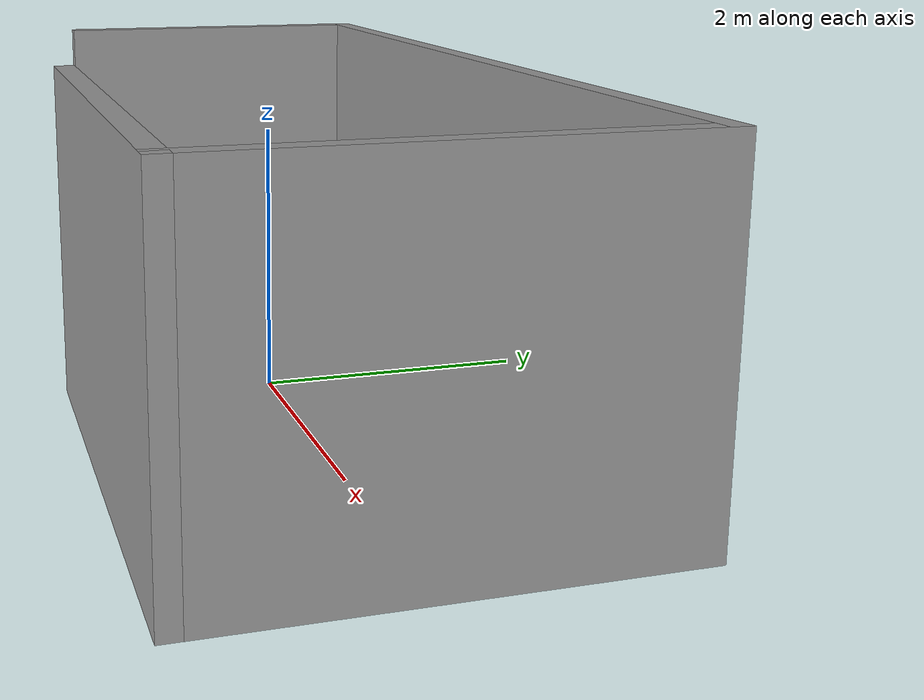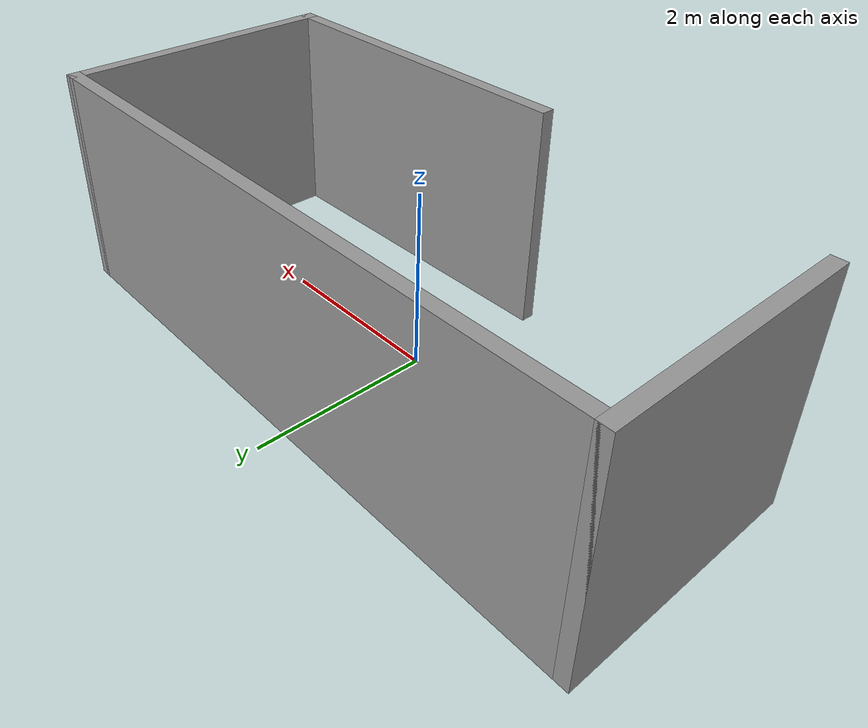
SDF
<?xml version='1.0'?>
<sdf version='1.7'>
  <model name='sweep_world'>
    <pose>0.13 0.08 0 0 -0 0</pose>
    <link name='Wall_0'>
      <collision name='Wall_0_Collision'>
        <geometry>
          <box>
            <size>2.75 0.15 2.5</size>
          </box>
        </geometry>
        <pose>0 0 1.25 0 -0 0</pose>
      </collision>
      <visual name='Wall_0_Visual'>
        <pose>0 0 1.25 0 -0 0</pose>
        <geometry>
          <box>
            <size>2.75 0.15 2.5</size>
          </box>
        </geometry>
        <material>
          <script>
            <name>Gazebo/Grey</name>
          </script>
          <ambient>1 1 1 1</ambient>
        </material>
        <meta>
          <layer>0</layer>
        </meta>
      </visual>
      <pose>-3.55 0.25 0 0 -0 1.5708</pose>
    </link>
    <link name='Wall_1'>
      <collision name='Wall_1_Collision'>
        <geometry>
          <box>
            <size>7.25 0.15 2.5</size>
          </box>
        </geometry>
        <pose>0 0 1.25 0 -0 0</pose>
      </collision>
      <visual name='Wall_1_Visual'>
        <pose>0 0 1.25 0 -0 0</pose>
        <geometry>
          <box>
            <size>7.25 0.15 2.5</size>
          </box>
        </geometry>
        <material>
          <script>
            <name>Gazebo/Grey</name>
          </script>
          <ambient>1 1 1 1</ambient>
        </material>
        <meta>
          <layer>0</layer>
        </meta>
      </visual>
      <pose>0 1.55 0 0 -0 0</pose>
    </link>
    <link name='Wall_2'>
      <collision name='Wall_2_Collision'>
        <geometry>
          <box>
            <size>3.25 0.15 2.5</size>
          </box>
        </geometry>
        <pose>0 0 1.25 0 -0 0</pose>
      </collision>
      <visual name='Wall_2_Visual'>
        <pose>0 0 1.25 0 -0 0</pose>
        <geometry>
          <box>
            <size>3.25 0.15 2.5</size>
          </box>
        </geometry>
        <material>
          <script>
            <name>Gazebo/Grey</name>
          </script>
          <ambient>1 1 1 1</ambient>
        </material>
        <meta>
          <layer>0</layer>
        </meta>
      </visual>
      <pose>3.55 -0 0 0 -0 -1.5708</pose>
    </link>
    <link name='Wall_3'>
      <collision name='Wall_3_Collision'>
        <geometry>
          <box>
            <size>4 0.15 2.5</size>
          </box>
        </geometry>
        <pose>0 0 1.25 0 -0 0</pose>
      </collision>
      <visual name='Wall_3_Visual'>
        <pose>0 0 1.25 0 -0 0</pose>
        <geometry>
          <box>
            <size>4 0.15 2.5</size>
          </box>
        </geometry>
        <material>
          <script>
            <name>Gazebo/Grey</name>
          </script>
          <ambient>1 1 1 1</ambient>
        </material>
        <meta>
          <layer>0</layer>
        </meta>
      </visual>
      <pose>1.625 -1.55 0 0 -0 3.14159</pose>
    </link>
    <static>1</static>
  </model>
</sdf>
